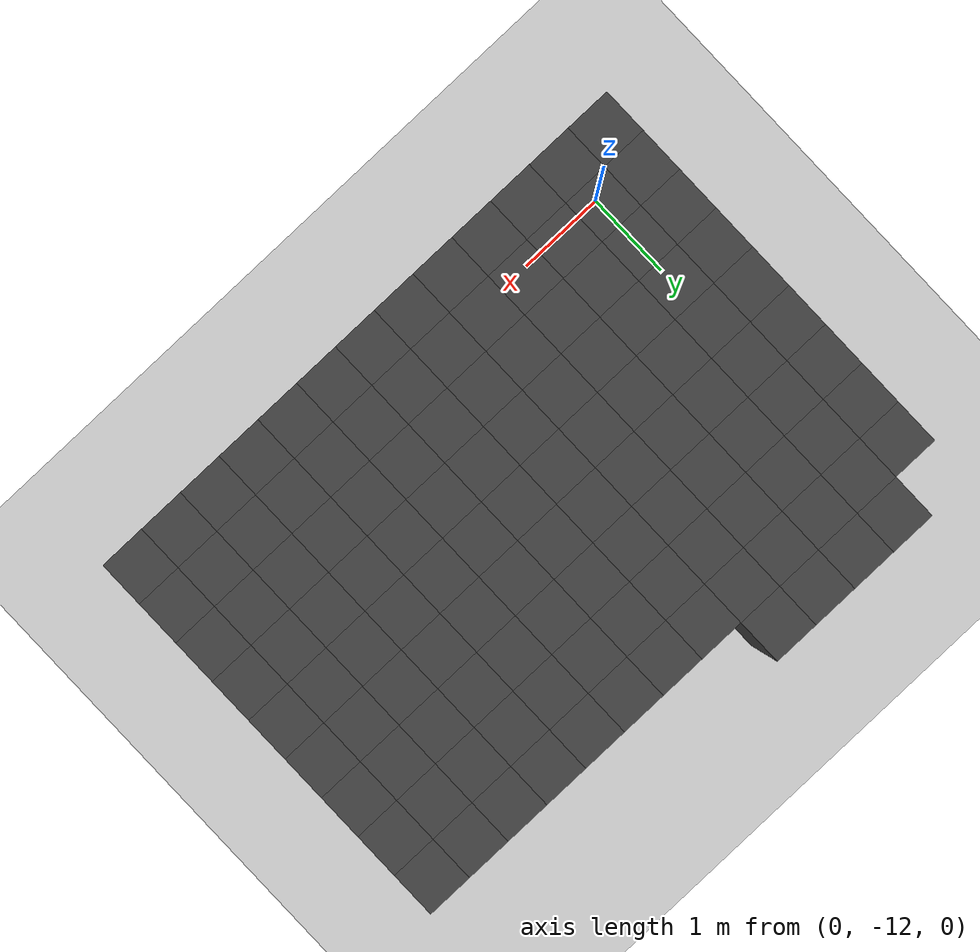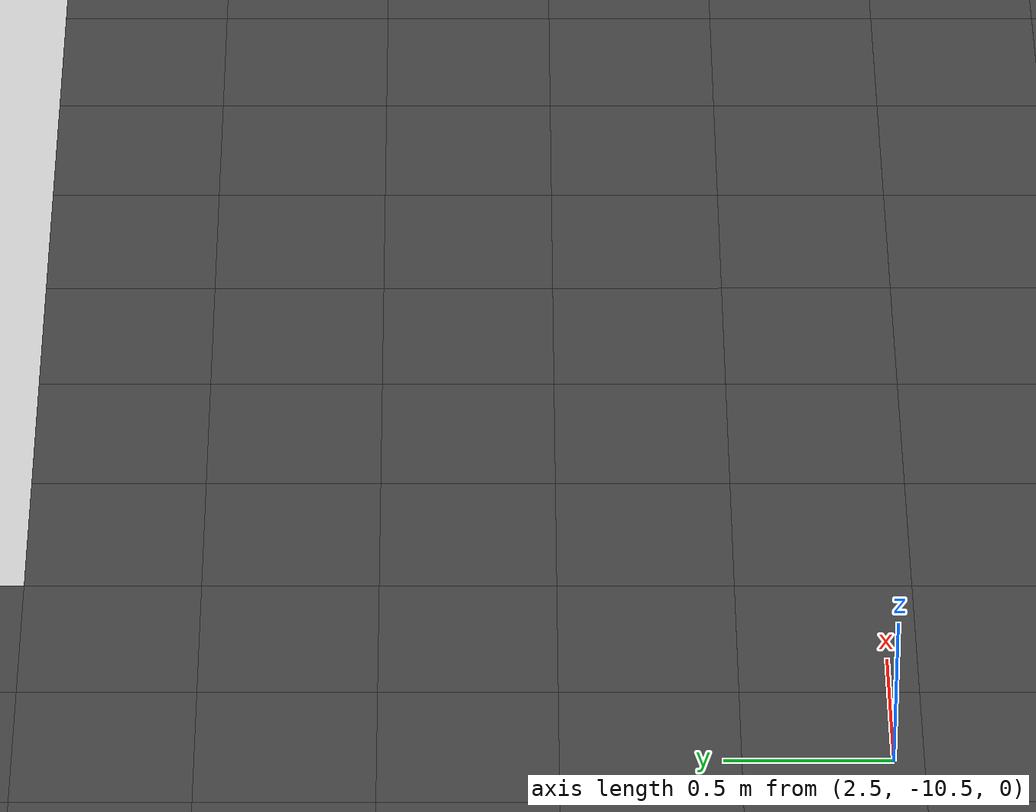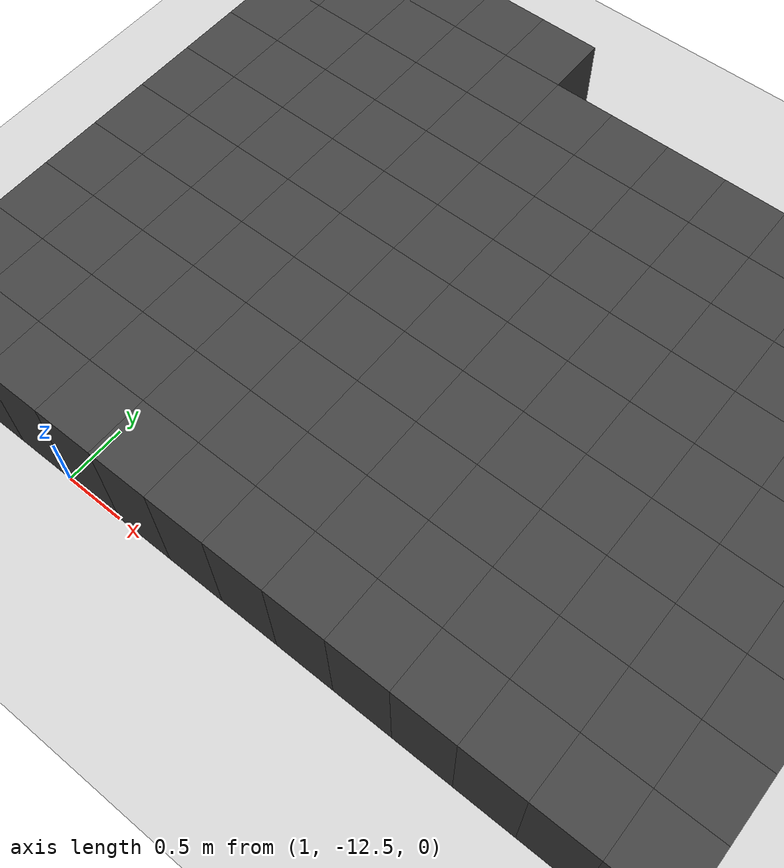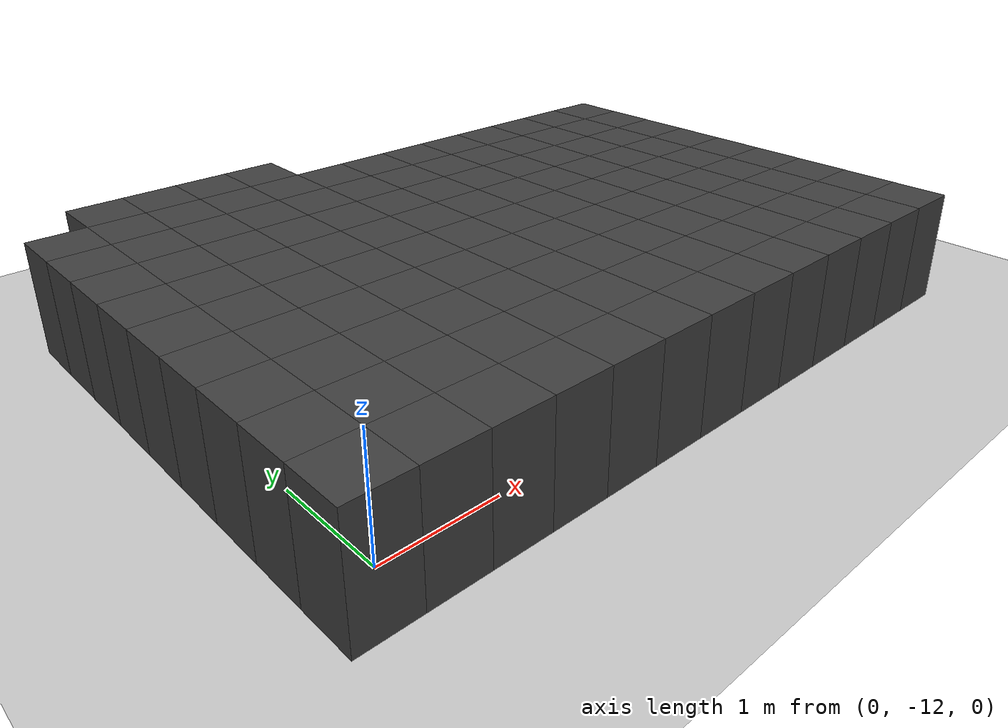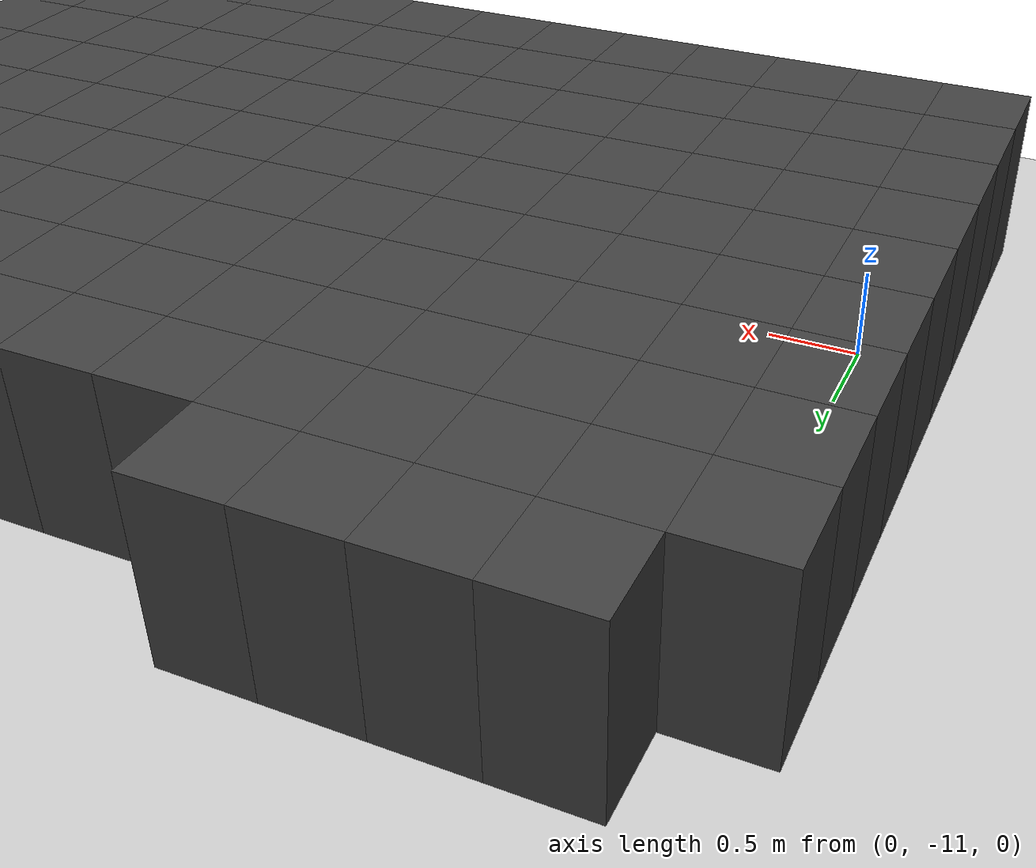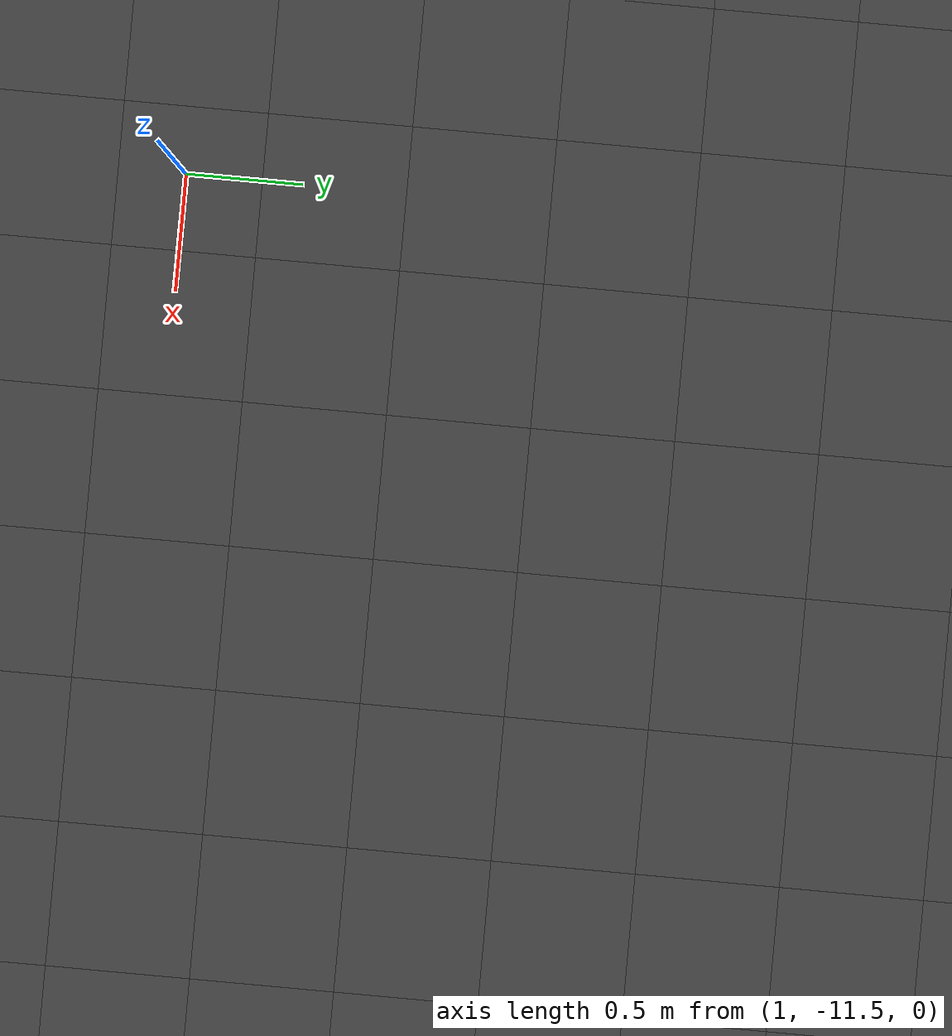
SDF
<sdf version="1.7">
 <world name="map_14547">
  <model name="ground_plane">
   <static>true</static>
   <link name="link">
    <collision name="collision">
     <geometry><plane><normal>0 0 1</normal><size>200 200</size></plane></geometry>
    </collision>
    <visual name="visual">
     <geometry><plane><normal>0 0 1</normal><size>200 200</size></plane></geometry>
     <material><ambient>0.8 0.8 0.8 1</ambient><diffuse>0.8 0.8 0.8 1</diffuse></material>
    </visual>
   </link>
  </model>
  <model name="maze_environment">
   <static>true</static>
   <link name="wall_1412">
    <pose>0.250 -7.750 0.500 0 0 0</pose>
    <collision name="col"><geometry><box><size>0.5 0.5 1.0</size></box></geometry></collision>
    <visual name="vis">
     <geometry><box><size>0.5 0.5 1.0</size></box></geometry>
     <material><ambient>0.15 0.15 0.15 1</ambient><diffuse>0.25 0.25 0.25 1</diffuse></material>
    </visual>
   </link>
   <link name="wall_1413">
    <pose>0.750 -7.750 0.500 0 0 0</pose>
    <collision name="col"><geometry><box><size>0.5 0.5 1.0</size></box></geometry></collision>
    <visual name="vis">
     <geometry><box><size>0.5 0.5 1.0</size></box></geometry>
     <material><ambient>0.15 0.15 0.15 1</ambient><diffuse>0.25 0.25 0.25 1</diffuse></material>
    </visual>
   </link>
   <link name="wall_1414">
    <pose>1.250 -7.750 0.500 0 0 0</pose>
    <collision name="col"><geometry><box><size>0.5 0.5 1.0</size></box></geometry></collision>
    <visual name="vis">
     <geometry><box><size>0.5 0.5 1.0</size></box></geometry>
     <material><ambient>0.15 0.15 0.15 1</ambient><diffuse>0.25 0.25 0.25 1</diffuse></material>
    </visual>
   </link>
   <link name="wall_1415">
    <pose>1.750 -7.750 0.500 0 0 0</pose>
    <collision name="col"><geometry><box><size>0.5 0.5 1.0</size></box></geometry></collision>
    <visual name="vis">
     <geometry><box><size>0.5 0.5 1.0</size></box></geometry>
     <material><ambient>0.15 0.15 0.15 1</ambient><diffuse>0.25 0.25 0.25 1</diffuse></material>
    </visual>
   </link>
   <link name="wall_1447">
    <pose>-0.250 -8.250 0.500 0 0 0</pose>
    <collision name="col"><geometry><box><size>0.5 0.5 1.0</size></box></geometry></collision>
    <visual name="vis">
     <geometry><box><size>0.5 0.5 1.0</size></box></geometry>
     <material><ambient>0.15 0.15 0.15 1</ambient><diffuse>0.25 0.25 0.25 1</diffuse></material>
    </visual>
   </link>
   <link name="wall_1448">
    <pose>0.250 -8.250 0.500 0 0 0</pose>
    <collision name="col"><geometry><box><size>0.5 0.5 1.0</size></box></geometry></collision>
    <visual name="vis">
     <geometry><box><size>0.5 0.5 1.0</size></box></geometry>
     <material><ambient>0.15 0.15 0.15 1</ambient><diffuse>0.25 0.25 0.25 1</diffuse></material>
    </visual>
   </link>
   <link name="wall_1449">
    <pose>0.750 -8.250 0.500 0 0 0</pose>
    <collision name="col"><geometry><box><size>0.5 0.5 1.0</size></box></geometry></collision>
    <visual name="vis">
     <geometry><box><size>0.5 0.5 1.0</size></box></geometry>
     <material><ambient>0.15 0.15 0.15 1</ambient><diffuse>0.25 0.25 0.25 1</diffuse></material>
    </visual>
   </link>
   <link name="wall_1450">
    <pose>1.250 -8.250 0.500 0 0 0</pose>
    <collision name="col"><geometry><box><size>0.5 0.5 1.0</size></box></geometry></collision>
    <visual name="vis">
     <geometry><box><size>0.5 0.5 1.0</size></box></geometry>
     <material><ambient>0.15 0.15 0.15 1</ambient><diffuse>0.25 0.25 0.25 1</diffuse></material>
    </visual>
   </link>
   <link name="wall_1451">
    <pose>1.750 -8.250 0.500 0 0 0</pose>
    <collision name="col"><geometry><box><size>0.5 0.5 1.0</size></box></geometry></collision>
    <visual name="vis">
     <geometry><box><size>0.5 0.5 1.0</size></box></geometry>
     <material><ambient>0.15 0.15 0.15 1</ambient><diffuse>0.25 0.25 0.25 1</diffuse></material>
    </visual>
   </link>
   <link name="wall_1452">
    <pose>2.250 -8.250 0.500 0 0 0</pose>
    <collision name="col"><geometry><box><size>0.5 0.5 1.0</size></box></geometry></collision>
    <visual name="vis">
     <geometry><box><size>0.5 0.5 1.0</size></box></geometry>
     <material><ambient>0.15 0.15 0.15 1</ambient><diffuse>0.25 0.25 0.25 1</diffuse></material>
    </visual>
   </link>
   <link name="wall_1453">
    <pose>2.750 -8.250 0.500 0 0 0</pose>
    <collision name="col"><geometry><box><size>0.5 0.5 1.0</size></box></geometry></collision>
    <visual name="vis">
     <geometry><box><size>0.5 0.5 1.0</size></box></geometry>
     <material><ambient>0.15 0.15 0.15 1</ambient><diffuse>0.25 0.25 0.25 1</diffuse></material>
    </visual>
   </link>
   <link name="wall_1454">
    <pose>3.250 -8.250 0.500 0 0 0</pose>
    <collision name="col"><geometry><box><size>0.5 0.5 1.0</size></box></geometry></collision>
    <visual name="vis">
     <geometry><box><size>0.5 0.5 1.0</size></box></geometry>
     <material><ambient>0.15 0.15 0.15 1</ambient><diffuse>0.25 0.25 0.25 1</diffuse></material>
    </visual>
   </link>
   <link name="wall_1455">
    <pose>3.750 -8.250 0.500 0 0 0</pose>
    <collision name="col"><geometry><box><size>0.5 0.5 1.0</size></box></geometry></collision>
    <visual name="vis">
     <geometry><box><size>0.5 0.5 1.0</size></box></geometry>
     <material><ambient>0.15 0.15 0.15 1</ambient><diffuse>0.25 0.25 0.25 1</diffuse></material>
    </visual>
   </link>
   <link name="wall_1456">
    <pose>4.250 -8.250 0.500 0 0 0</pose>
    <collision name="col"><geometry><box><size>0.5 0.5 1.0</size></box></geometry></collision>
    <visual name="vis">
     <geometry><box><size>0.5 0.5 1.0</size></box></geometry>
     <material><ambient>0.15 0.15 0.15 1</ambient><diffuse>0.25 0.25 0.25 1</diffuse></material>
    </visual>
   </link>
   <link name="wall_1457">
    <pose>4.750 -8.250 0.500 0 0 0</pose>
    <collision name="col"><geometry><box><size>0.5 0.5 1.0</size></box></geometry></collision>
    <visual name="vis">
     <geometry><box><size>0.5 0.5 1.0</size></box></geometry>
     <material><ambient>0.15 0.15 0.15 1</ambient><diffuse>0.25 0.25 0.25 1</diffuse></material>
    </visual>
   </link>
   <link name="wall_1458">
    <pose>5.250 -8.250 0.500 0 0 0</pose>
    <collision name="col"><geometry><box><size>0.5 0.5 1.0</size></box></geometry></collision>
    <visual name="vis">
     <geometry><box><size>0.5 0.5 1.0</size></box></geometry>
     <material><ambient>0.15 0.15 0.15 1</ambient><diffuse>0.25 0.25 0.25 1</diffuse></material>
    </visual>
   </link>
   <link name="wall_1459">
    <pose>5.750 -8.250 0.500 0 0 0</pose>
    <collision name="col"><geometry><box><size>0.5 0.5 1.0</size></box></geometry></collision>
    <visual name="vis">
     <geometry><box><size>0.5 0.5 1.0</size></box></geometry>
     <material><ambient>0.15 0.15 0.15 1</ambient><diffuse>0.25 0.25 0.25 1</diffuse></material>
    </visual>
   </link>
   <link name="wall_1484">
    <pose>-0.250 -8.750 0.500 0 0 0</pose>
    <collision name="col"><geometry><box><size>0.5 0.5 1.0</size></box></geometry></collision>
    <visual name="vis">
     <geometry><box><size>0.5 0.5 1.0</size></box></geometry>
     <material><ambient>0.15 0.15 0.15 1</ambient><diffuse>0.25 0.25 0.25 1</diffuse></material>
    </visual>
   </link>
   <link name="wall_1485">
    <pose>0.250 -8.750 0.500 0 0 0</pose>
    <collision name="col"><geometry><box><size>0.5 0.5 1.0</size></box></geometry></collision>
    <visual name="vis">
     <geometry><box><size>0.5 0.5 1.0</size></box></geometry>
     <material><ambient>0.15 0.15 0.15 1</ambient><diffuse>0.25 0.25 0.25 1</diffuse></material>
    </visual>
   </link>
   <link name="wall_1486">
    <pose>0.750 -8.750 0.500 0 0 0</pose>
    <collision name="col"><geometry><box><size>0.5 0.5 1.0</size></box></geometry></collision>
    <visual name="vis">
     <geometry><box><size>0.5 0.5 1.0</size></box></geometry>
     <material><ambient>0.15 0.15 0.15 1</ambient><diffuse>0.25 0.25 0.25 1</diffuse></material>
    </visual>
   </link>
   <link name="wall_1487">
    <pose>1.250 -8.750 0.500 0 0 0</pose>
    <collision name="col"><geometry><box><size>0.5 0.5 1.0</size></box></geometry></collision>
    <visual name="vis">
     <geometry><box><size>0.5 0.5 1.0</size></box></geometry>
     <material><ambient>0.15 0.15 0.15 1</ambient><diffuse>0.25 0.25 0.25 1</diffuse></material>
    </visual>
   </link>
   <link name="wall_1488">
    <pose>1.750 -8.750 0.500 0 0 0</pose>
    <collision name="col"><geometry><box><size>0.5 0.5 1.0</size></box></geometry></collision>
    <visual name="vis">
     <geometry><box><size>0.5 0.5 1.0</size></box></geometry>
     <material><ambient>0.15 0.15 0.15 1</ambient><diffuse>0.25 0.25 0.25 1</diffuse></material>
    </visual>
   </link>
   <link name="wall_1489">
    <pose>2.250 -8.750 0.500 0 0 0</pose>
    <collision name="col"><geometry><box><size>0.5 0.5 1.0</size></box></geometry></collision>
    <visual name="vis">
     <geometry><box><size>0.5 0.5 1.0</size></box></geometry>
     <material><ambient>0.15 0.15 0.15 1</ambient><diffuse>0.25 0.25 0.25 1</diffuse></material>
    </visual>
   </link>
   <link name="wall_1490">
    <pose>2.750 -8.750 0.500 0 0 0</pose>
    <collision name="col"><geometry><box><size>0.5 0.5 1.0</size></box></geometry></collision>
    <visual name="vis">
     <geometry><box><size>0.5 0.5 1.0</size></box></geometry>
     <material><ambient>0.15 0.15 0.15 1</ambient><diffuse>0.25 0.25 0.25 1</diffuse></material>
    </visual>
   </link>
   <link name="wall_1491">
    <pose>3.250 -8.750 0.500 0 0 0</pose>
    <collision name="col"><geometry><box><size>0.5 0.5 1.0</size></box></geometry></collision>
    <visual name="vis">
     <geometry><box><size>0.5 0.5 1.0</size></box></geometry>
     <material><ambient>0.15 0.15 0.15 1</ambient><diffuse>0.25 0.25 0.25 1</diffuse></material>
    </visual>
   </link>
   <link name="wall_1492">
    <pose>3.750 -8.750 0.500 0 0 0</pose>
    <collision name="col"><geometry><box><size>0.5 0.5 1.0</size></box></geometry></collision>
    <visual name="vis">
     <geometry><box><size>0.5 0.5 1.0</size></box></geometry>
     <material><ambient>0.15 0.15 0.15 1</ambient><diffuse>0.25 0.25 0.25 1</diffuse></material>
    </visual>
   </link>
   <link name="wall_1493">
    <pose>4.250 -8.750 0.500 0 0 0</pose>
    <collision name="col"><geometry><box><size>0.5 0.5 1.0</size></box></geometry></collision>
    <visual name="vis">
     <geometry><box><size>0.5 0.5 1.0</size></box></geometry>
     <material><ambient>0.15 0.15 0.15 1</ambient><diffuse>0.25 0.25 0.25 1</diffuse></material>
    </visual>
   </link>
   <link name="wall_1494">
    <pose>4.750 -8.750 0.500 0 0 0</pose>
    <collision name="col"><geometry><box><size>0.5 0.5 1.0</size></box></geometry></collision>
    <visual name="vis">
     <geometry><box><size>0.5 0.5 1.0</size></box></geometry>
     <material><ambient>0.15 0.15 0.15 1</ambient><diffuse>0.25 0.25 0.25 1</diffuse></material>
    </visual>
   </link>
   <link name="wall_1495">
    <pose>5.250 -8.750 0.500 0 0 0</pose>
    <collision name="col"><geometry><box><size>0.5 0.5 1.0</size></box></geometry></collision>
    <visual name="vis">
     <geometry><box><size>0.5 0.5 1.0</size></box></geometry>
     <material><ambient>0.15 0.15 0.15 1</ambient><diffuse>0.25 0.25 0.25 1</diffuse></material>
    </visual>
   </link>
   <link name="wall_1496">
    <pose>5.750 -8.750 0.500 0 0 0</pose>
    <collision name="col"><geometry><box><size>0.5 0.5 1.0</size></box></geometry></collision>
    <visual name="vis">
     <geometry><box><size>0.5 0.5 1.0</size></box></geometry>
     <material><ambient>0.15 0.15 0.15 1</ambient><diffuse>0.25 0.25 0.25 1</diffuse></material>
    </visual>
   </link>
   <link name="wall_1527">
    <pose>-0.250 -9.250 0.500 0 0 0</pose>
    <collision name="col"><geometry><box><size>0.5 0.5 1.0</size></box></geometry></collision>
    <visual name="vis">
     <geometry><box><size>0.5 0.5 1.0</size></box></geometry>
     <material><ambient>0.15 0.15 0.15 1</ambient><diffuse>0.25 0.25 0.25 1</diffuse></material>
    </visual>
   </link>
   <link name="wall_1528">
    <pose>0.250 -9.250 0.500 0 0 0</pose>
    <collision name="col"><geometry><box><size>0.5 0.5 1.0</size></box></geometry></collision>
    <visual name="vis">
     <geometry><box><size>0.5 0.5 1.0</size></box></geometry>
     <material><ambient>0.15 0.15 0.15 1</ambient><diffuse>0.25 0.25 0.25 1</diffuse></material>
    </visual>
   </link>
   <link name="wall_1529">
    <pose>0.750 -9.250 0.500 0 0 0</pose>
    <collision name="col"><geometry><box><size>0.5 0.5 1.0</size></box></geometry></collision>
    <visual name="vis">
     <geometry><box><size>0.5 0.5 1.0</size></box></geometry>
     <material><ambient>0.15 0.15 0.15 1</ambient><diffuse>0.25 0.25 0.25 1</diffuse></material>
    </visual>
   </link>
   <link name="wall_1530">
    <pose>1.250 -9.250 0.500 0 0 0</pose>
    <collision name="col"><geometry><box><size>0.5 0.5 1.0</size></box></geometry></collision>
    <visual name="vis">
     <geometry><box><size>0.5 0.5 1.0</size></box></geometry>
     <material><ambient>0.15 0.15 0.15 1</ambient><diffuse>0.25 0.25 0.25 1</diffuse></material>
    </visual>
   </link>
   <link name="wall_1531">
    <pose>1.750 -9.250 0.500 0 0 0</pose>
    <collision name="col"><geometry><box><size>0.5 0.5 1.0</size></box></geometry></collision>
    <visual name="vis">
     <geometry><box><size>0.5 0.5 1.0</size></box></geometry>
     <material><ambient>0.15 0.15 0.15 1</ambient><diffuse>0.25 0.25 0.25 1</diffuse></material>
    </visual>
   </link>
   <link name="wall_1532">
    <pose>2.250 -9.250 0.500 0 0 0</pose>
    <collision name="col"><geometry><box><size>0.5 0.5 1.0</size></box></geometry></collision>
    <visual name="vis">
     <geometry><box><size>0.5 0.5 1.0</size></box></geometry>
     <material><ambient>0.15 0.15 0.15 1</ambient><diffuse>0.25 0.25 0.25 1</diffuse></material>
    </visual>
   </link>
   <link name="wall_1533">
    <pose>2.750 -9.250 0.500 0 0 0</pose>
    <collision name="col"><geometry><box><size>0.5 0.5 1.0</size></box></geometry></collision>
    <visual name="vis">
     <geometry><box><size>0.5 0.5 1.0</size></box></geometry>
     <material><ambient>0.15 0.15 0.15 1</ambient><diffuse>0.25 0.25 0.25 1</diffuse></material>
    </visual>
   </link>
   <link name="wall_1534">
    <pose>3.250 -9.250 0.500 0 0 0</pose>
    <collision name="col"><geometry><box><size>0.5 0.5 1.0</size></box></geometry></collision>
    <visual name="vis">
     <geometry><box><size>0.5 0.5 1.0</size></box></geometry>
     <material><ambient>0.15 0.15 0.15 1</ambient><diffuse>0.25 0.25 0.25 1</diffuse></material>
    </visual>
   </link>
   <link name="wall_1535">
    <pose>3.750 -9.250 0.500 0 0 0</pose>
    <collision name="col"><geometry><box><size>0.5 0.5 1.0</size></box></geometry></collision>
    <visual name="vis">
     <geometry><box><size>0.5 0.5 1.0</size></box></geometry>
     <material><ambient>0.15 0.15 0.15 1</ambient><diffuse>0.25 0.25 0.25 1</diffuse></material>
    </visual>
   </link>
   <link name="wall_1536">
    <pose>4.250 -9.250 0.500 0 0 0</pose>
    <collision name="col"><geometry><box><size>0.5 0.5 1.0</size></box></geometry></collision>
    <visual name="vis">
     <geometry><box><size>0.5 0.5 1.0</size></box></geometry>
     <material><ambient>0.15 0.15 0.15 1</ambient><diffuse>0.25 0.25 0.25 1</diffuse></material>
    </visual>
   </link>
   <link name="wall_1537">
    <pose>4.750 -9.250 0.500 0 0 0</pose>
    <collision name="col"><geometry><box><size>0.5 0.5 1.0</size></box></geometry></collision>
    <visual name="vis">
     <geometry><box><size>0.5 0.5 1.0</size></box></geometry>
     <material><ambient>0.15 0.15 0.15 1</ambient><diffuse>0.25 0.25 0.25 1</diffuse></material>
    </visual>
   </link>
   <link name="wall_1538">
    <pose>5.250 -9.250 0.500 0 0 0</pose>
    <collision name="col"><geometry><box><size>0.5 0.5 1.0</size></box></geometry></collision>
    <visual name="vis">
     <geometry><box><size>0.5 0.5 1.0</size></box></geometry>
     <material><ambient>0.15 0.15 0.15 1</ambient><diffuse>0.25 0.25 0.25 1</diffuse></material>
    </visual>
   </link>
   <link name="wall_1539">
    <pose>5.750 -9.250 0.500 0 0 0</pose>
    <collision name="col"><geometry><box><size>0.5 0.5 1.0</size></box></geometry></collision>
    <visual name="vis">
     <geometry><box><size>0.5 0.5 1.0</size></box></geometry>
     <material><ambient>0.15 0.15 0.15 1</ambient><diffuse>0.25 0.25 0.25 1</diffuse></material>
    </visual>
   </link>
   <link name="wall_1570">
    <pose>-0.250 -9.750 0.500 0 0 0</pose>
    <collision name="col"><geometry><box><size>0.5 0.5 1.0</size></box></geometry></collision>
    <visual name="vis">
     <geometry><box><size>0.5 0.5 1.0</size></box></geometry>
     <material><ambient>0.15 0.15 0.15 1</ambient><diffuse>0.25 0.25 0.25 1</diffuse></material>
    </visual>
   </link>
   <link name="wall_1571">
    <pose>0.250 -9.750 0.500 0 0 0</pose>
    <collision name="col"><geometry><box><size>0.5 0.5 1.0</size></box></geometry></collision>
    <visual name="vis">
     <geometry><box><size>0.5 0.5 1.0</size></box></geometry>
     <material><ambient>0.15 0.15 0.15 1</ambient><diffuse>0.25 0.25 0.25 1</diffuse></material>
    </visual>
   </link>
   <link name="wall_1572">
    <pose>0.750 -9.750 0.500 0 0 0</pose>
    <collision name="col"><geometry><box><size>0.5 0.5 1.0</size></box></geometry></collision>
    <visual name="vis">
     <geometry><box><size>0.5 0.5 1.0</size></box></geometry>
     <material><ambient>0.15 0.15 0.15 1</ambient><diffuse>0.25 0.25 0.25 1</diffuse></material>
    </visual>
   </link>
   <link name="wall_1573">
    <pose>1.250 -9.750 0.500 0 0 0</pose>
    <collision name="col"><geometry><box><size>0.5 0.5 1.0</size></box></geometry></collision>
    <visual name="vis">
     <geometry><box><size>0.5 0.5 1.0</size></box></geometry>
     <material><ambient>0.15 0.15 0.15 1</ambient><diffuse>0.25 0.25 0.25 1</diffuse></material>
    </visual>
   </link>
   <link name="wall_1574">
    <pose>1.750 -9.750 0.500 0 0 0</pose>
    <collision name="col"><geometry><box><size>0.5 0.5 1.0</size></box></geometry></collision>
    <visual name="vis">
     <geometry><box><size>0.5 0.5 1.0</size></box></geometry>
     <material><ambient>0.15 0.15 0.15 1</ambient><diffuse>0.25 0.25 0.25 1</diffuse></material>
    </visual>
   </link>
   <link name="wall_1575">
    <pose>2.250 -9.750 0.500 0 0 0</pose>
    <collision name="col"><geometry><box><size>0.5 0.5 1.0</size></box></geometry></collision>
    <visual name="vis">
     <geometry><box><size>0.5 0.5 1.0</size></box></geometry>
     <material><ambient>0.15 0.15 0.15 1</ambient><diffuse>0.25 0.25 0.25 1</diffuse></material>
    </visual>
   </link>
   <link name="wall_1576">
    <pose>2.750 -9.750 0.500 0 0 0</pose>
    <collision name="col"><geometry><box><size>0.5 0.5 1.0</size></box></geometry></collision>
    <visual name="vis">
     <geometry><box><size>0.5 0.5 1.0</size></box></geometry>
     <material><ambient>0.15 0.15 0.15 1</ambient><diffuse>0.25 0.25 0.25 1</diffuse></material>
    </visual>
   </link>
   <link name="wall_1577">
    <pose>3.250 -9.750 0.500 0 0 0</pose>
    <collision name="col"><geometry><box><size>0.5 0.5 1.0</size></box></geometry></collision>
    <visual name="vis">
     <geometry><box><size>0.5 0.5 1.0</size></box></geometry>
     <material><ambient>0.15 0.15 0.15 1</ambient><diffuse>0.25 0.25 0.25 1</diffuse></material>
    </visual>
   </link>
   <link name="wall_1578">
    <pose>3.750 -9.750 0.500 0 0 0</pose>
    <collision name="col"><geometry><box><size>0.5 0.5 1.0</size></box></geometry></collision>
    <visual name="vis">
     <geometry><box><size>0.5 0.5 1.0</size></box></geometry>
     <material><ambient>0.15 0.15 0.15 1</ambient><diffuse>0.25 0.25 0.25 1</diffuse></material>
    </visual>
   </link>
   <link name="wall_1579">
    <pose>4.250 -9.750 0.500 0 0 0</pose>
    <collision name="col"><geometry><box><size>0.5 0.5 1.0</size></box></geometry></collision>
    <visual name="vis">
     <geometry><box><size>0.5 0.5 1.0</size></box></geometry>
     <material><ambient>0.15 0.15 0.15 1</ambient><diffuse>0.25 0.25 0.25 1</diffuse></material>
    </visual>
   </link>
   <link name="wall_1580">
    <pose>4.750 -9.750 0.500 0 0 0</pose>
    <collision name="col"><geometry><box><size>0.5 0.5 1.0</size></box></geometry></collision>
    <visual name="vis">
     <geometry><box><size>0.5 0.5 1.0</size></box></geometry>
     <material><ambient>0.15 0.15 0.15 1</ambient><diffuse>0.25 0.25 0.25 1</diffuse></material>
    </visual>
   </link>
   <link name="wall_1581">
    <pose>5.250 -9.750 0.500 0 0 0</pose>
    <collision name="col"><geometry><box><size>0.5 0.5 1.0</size></box></geometry></collision>
    <visual name="vis">
     <geometry><box><size>0.5 0.5 1.0</size></box></geometry>
     <material><ambient>0.15 0.15 0.15 1</ambient><diffuse>0.25 0.25 0.25 1</diffuse></material>
    </visual>
   </link>
   <link name="wall_1582">
    <pose>5.750 -9.750 0.500 0 0 0</pose>
    <collision name="col"><geometry><box><size>0.5 0.5 1.0</size></box></geometry></collision>
    <visual name="vis">
     <geometry><box><size>0.5 0.5 1.0</size></box></geometry>
     <material><ambient>0.15 0.15 0.15 1</ambient><diffuse>0.25 0.25 0.25 1</diffuse></material>
    </visual>
   </link>
   <link name="wall_1613">
    <pose>-0.250 -10.250 0.500 0 0 0</pose>
    <collision name="col"><geometry><box><size>0.5 0.5 1.0</size></box></geometry></collision>
    <visual name="vis">
     <geometry><box><size>0.5 0.5 1.0</size></box></geometry>
     <material><ambient>0.15 0.15 0.15 1</ambient><diffuse>0.25 0.25 0.25 1</diffuse></material>
    </visual>
   </link>
   <link name="wall_1614">
    <pose>0.250 -10.250 0.500 0 0 0</pose>
    <collision name="col"><geometry><box><size>0.5 0.5 1.0</size></box></geometry></collision>
    <visual name="vis">
     <geometry><box><size>0.5 0.5 1.0</size></box></geometry>
     <material><ambient>0.15 0.15 0.15 1</ambient><diffuse>0.25 0.25 0.25 1</diffuse></material>
    </visual>
   </link>
   <link name="wall_1615">
    <pose>0.750 -10.250 0.500 0 0 0</pose>
    <collision name="col"><geometry><box><size>0.5 0.5 1.0</size></box></geometry></collision>
    <visual name="vis">
     <geometry><box><size>0.5 0.5 1.0</size></box></geometry>
     <material><ambient>0.15 0.15 0.15 1</ambient><diffuse>0.25 0.25 0.25 1</diffuse></material>
    </visual>
   </link>
   <link name="wall_1616">
    <pose>1.250 -10.250 0.500 0 0 0</pose>
    <collision name="col"><geometry><box><size>0.5 0.5 1.0</size></box></geometry></collision>
    <visual name="vis">
     <geometry><box><size>0.5 0.5 1.0</size></box></geometry>
     <material><ambient>0.15 0.15 0.15 1</ambient><diffuse>0.25 0.25 0.25 1</diffuse></material>
    </visual>
   </link>
   <link name="wall_1617">
    <pose>1.750 -10.250 0.500 0 0 0</pose>
    <collision name="col"><geometry><box><size>0.5 0.5 1.0</size></box></geometry></collision>
    <visual name="vis">
     <geometry><box><size>0.5 0.5 1.0</size></box></geometry>
     <material><ambient>0.15 0.15 0.15 1</ambient><diffuse>0.25 0.25 0.25 1</diffuse></material>
    </visual>
   </link>
   <link name="wall_1618">
    <pose>2.250 -10.250 0.500 0 0 0</pose>
    <collision name="col"><geometry><box><size>0.5 0.5 1.0</size></box></geometry></collision>
    <visual name="vis">
     <geometry><box><size>0.5 0.5 1.0</size></box></geometry>
     <material><ambient>0.15 0.15 0.15 1</ambient><diffuse>0.25 0.25 0.25 1</diffuse></material>
    </visual>
   </link>
   <link name="wall_1619">
    <pose>2.750 -10.250 0.500 0 0 0</pose>
    <collision name="col"><geometry><box><size>0.5 0.5 1.0</size></box></geometry></collision>
    <visual name="vis">
     <geometry><box><size>0.5 0.5 1.0</size></box></geometry>
     <material><ambient>0.15 0.15 0.15 1</ambient><diffuse>0.25 0.25 0.25 1</diffuse></material>
    </visual>
   </link>
   <link name="wall_1620">
    <pose>3.250 -10.250 0.500 0 0 0</pose>
    <collision name="col"><geometry><box><size>0.5 0.5 1.0</size></box></geometry></collision>
    <visual name="vis">
     <geometry><box><size>0.5 0.5 1.0</size></box></geometry>
     <material><ambient>0.15 0.15 0.15 1</ambient><diffuse>0.25 0.25 0.25 1</diffuse></material>
    </visual>
   </link>
   <link name="wall_1621">
    <pose>3.750 -10.250 0.500 0 0 0</pose>
    <collision name="col"><geometry><box><size>0.5 0.5 1.0</size></box></geometry></collision>
    <visual name="vis">
     <geometry><box><size>0.5 0.5 1.0</size></box></geometry>
     <material><ambient>0.15 0.15 0.15 1</ambient><diffuse>0.25 0.25 0.25 1</diffuse></material>
    </visual>
   </link>
   <link name="wall_1622">
    <pose>4.250 -10.250 0.500 0 0 0</pose>
    <collision name="col"><geometry><box><size>0.5 0.5 1.0</size></box></geometry></collision>
    <visual name="vis">
     <geometry><box><size>0.5 0.5 1.0</size></box></geometry>
     <material><ambient>0.15 0.15 0.15 1</ambient><diffuse>0.25 0.25 0.25 1</diffuse></material>
    </visual>
   </link>
   <link name="wall_1623">
    <pose>4.750 -10.250 0.500 0 0 0</pose>
    <collision name="col"><geometry><box><size>0.5 0.5 1.0</size></box></geometry></collision>
    <visual name="vis">
     <geometry><box><size>0.5 0.5 1.0</size></box></geometry>
     <material><ambient>0.15 0.15 0.15 1</ambient><diffuse>0.25 0.25 0.25 1</diffuse></material>
    </visual>
   </link>
   <link name="wall_1624">
    <pose>5.250 -10.250 0.500 0 0 0</pose>
    <collision name="col"><geometry><box><size>0.5 0.5 1.0</size></box></geometry></collision>
    <visual name="vis">
     <geometry><box><size>0.5 0.5 1.0</size></box></geometry>
     <material><ambient>0.15 0.15 0.15 1</ambient><diffuse>0.25 0.25 0.25 1</diffuse></material>
    </visual>
   </link>
   <link name="wall_1625">
    <pose>5.750 -10.250 0.500 0 0 0</pose>
    <collision name="col"><geometry><box><size>0.5 0.5 1.0</size></box></geometry></collision>
    <visual name="vis">
     <geometry><box><size>0.5 0.5 1.0</size></box></geometry>
     <material><ambient>0.15 0.15 0.15 1</ambient><diffuse>0.25 0.25 0.25 1</diffuse></material>
    </visual>
   </link>
   <link name="wall_1662">
    <pose>-0.250 -10.750 0.500 0 0 0</pose>
    <collision name="col"><geometry><box><size>0.5 0.5 1.0</size></box></geometry></collision>
    <visual name="vis">
     <geometry><box><size>0.5 0.5 1.0</size></box></geometry>
     <material><ambient>0.15 0.15 0.15 1</ambient><diffuse>0.25 0.25 0.25 1</diffuse></material>
    </visual>
   </link>
   <link name="wall_1663">
    <pose>0.250 -10.750 0.500 0 0 0</pose>
    <collision name="col"><geometry><box><size>0.5 0.5 1.0</size></box></geometry></collision>
    <visual name="vis">
     <geometry><box><size>0.5 0.5 1.0</size></box></geometry>
     <material><ambient>0.15 0.15 0.15 1</ambient><diffuse>0.25 0.25 0.25 1</diffuse></material>
    </visual>
   </link>
   <link name="wall_1664">
    <pose>0.750 -10.750 0.500 0 0 0</pose>
    <collision name="col"><geometry><box><size>0.5 0.5 1.0</size></box></geometry></collision>
    <visual name="vis">
     <geometry><box><size>0.5 0.5 1.0</size></box></geometry>
     <material><ambient>0.15 0.15 0.15 1</ambient><diffuse>0.25 0.25 0.25 1</diffuse></material>
    </visual>
   </link>
   <link name="wall_1665">
    <pose>1.250 -10.750 0.500 0 0 0</pose>
    <collision name="col"><geometry><box><size>0.5 0.5 1.0</size></box></geometry></collision>
    <visual name="vis">
     <geometry><box><size>0.5 0.5 1.0</size></box></geometry>
     <material><ambient>0.15 0.15 0.15 1</ambient><diffuse>0.25 0.25 0.25 1</diffuse></material>
    </visual>
   </link>
   <link name="wall_1666">
    <pose>1.750 -10.750 0.500 0 0 0</pose>
    <collision name="col"><geometry><box><size>0.5 0.5 1.0</size></box></geometry></collision>
    <visual name="vis">
     <geometry><box><size>0.5 0.5 1.0</size></box></geometry>
     <material><ambient>0.15 0.15 0.15 1</ambient><diffuse>0.25 0.25 0.25 1</diffuse></material>
    </visual>
   </link>
   <link name="wall_1667">
    <pose>2.250 -10.750 0.500 0 0 0</pose>
    <collision name="col"><geometry><box><size>0.5 0.5 1.0</size></box></geometry></collision>
    <visual name="vis">
     <geometry><box><size>0.5 0.5 1.0</size></box></geometry>
     <material><ambient>0.15 0.15 0.15 1</ambient><diffuse>0.25 0.25 0.25 1</diffuse></material>
    </visual>
   </link>
   <link name="wall_1668">
    <pose>2.750 -10.750 0.500 0 0 0</pose>
    <collision name="col"><geometry><box><size>0.5 0.5 1.0</size></box></geometry></collision>
    <visual name="vis">
     <geometry><box><size>0.5 0.5 1.0</size></box></geometry>
     <material><ambient>0.15 0.15 0.15 1</ambient><diffuse>0.25 0.25 0.25 1</diffuse></material>
    </visual>
   </link>
   <link name="wall_1669">
    <pose>3.250 -10.750 0.500 0 0 0</pose>
    <collision name="col"><geometry><box><size>0.5 0.5 1.0</size></box></geometry></collision>
    <visual name="vis">
     <geometry><box><size>0.5 0.5 1.0</size></box></geometry>
     <material><ambient>0.15 0.15 0.15 1</ambient><diffuse>0.25 0.25 0.25 1</diffuse></material>
    </visual>
   </link>
   <link name="wall_1670">
    <pose>3.750 -10.750 0.500 0 0 0</pose>
    <collision name="col"><geometry><box><size>0.5 0.5 1.0</size></box></geometry></collision>
    <visual name="vis">
     <geometry><box><size>0.5 0.5 1.0</size></box></geometry>
     <material><ambient>0.15 0.15 0.15 1</ambient><diffuse>0.25 0.25 0.25 1</diffuse></material>
    </visual>
   </link>
   <link name="wall_1671">
    <pose>4.250 -10.750 0.500 0 0 0</pose>
    <collision name="col"><geometry><box><size>0.5 0.5 1.0</size></box></geometry></collision>
    <visual name="vis">
     <geometry><box><size>0.5 0.5 1.0</size></box></geometry>
     <material><ambient>0.15 0.15 0.15 1</ambient><diffuse>0.25 0.25 0.25 1</diffuse></material>
    </visual>
   </link>
   <link name="wall_1672">
    <pose>4.750 -10.750 0.500 0 0 0</pose>
    <collision name="col"><geometry><box><size>0.5 0.5 1.0</size></box></geometry></collision>
    <visual name="vis">
     <geometry><box><size>0.5 0.5 1.0</size></box></geometry>
     <material><ambient>0.15 0.15 0.15 1</ambient><diffuse>0.25 0.25 0.25 1</diffuse></material>
    </visual>
   </link>
   <link name="wall_1673">
    <pose>5.250 -10.750 0.500 0 0 0</pose>
    <collision name="col"><geometry><box><size>0.5 0.5 1.0</size></box></geometry></collision>
    <visual name="vis">
     <geometry><box><size>0.5 0.5 1.0</size></box></geometry>
     <material><ambient>0.15 0.15 0.15 1</ambient><diffuse>0.25 0.25 0.25 1</diffuse></material>
    </visual>
   </link>
   <link name="wall_1674">
    <pose>5.750 -10.750 0.500 0 0 0</pose>
    <collision name="col"><geometry><box><size>0.5 0.5 1.0</size></box></geometry></collision>
    <visual name="vis">
     <geometry><box><size>0.5 0.5 1.0</size></box></geometry>
     <material><ambient>0.15 0.15 0.15 1</ambient><diffuse>0.25 0.25 0.25 1</diffuse></material>
    </visual>
   </link>
   <link name="wall_1708">
    <pose>-0.250 -11.250 0.500 0 0 0</pose>
    <collision name="col"><geometry><box><size>0.5 0.5 1.0</size></box></geometry></collision>
    <visual name="vis">
     <geometry><box><size>0.5 0.5 1.0</size></box></geometry>
     <material><ambient>0.15 0.15 0.15 1</ambient><diffuse>0.25 0.25 0.25 1</diffuse></material>
    </visual>
   </link>
   <link name="wall_1709">
    <pose>0.250 -11.250 0.500 0 0 0</pose>
    <collision name="col"><geometry><box><size>0.5 0.5 1.0</size></box></geometry></collision>
    <visual name="vis">
     <geometry><box><size>0.5 0.5 1.0</size></box></geometry>
     <material><ambient>0.15 0.15 0.15 1</ambient><diffuse>0.25 0.25 0.25 1</diffuse></material>
    </visual>
   </link>
   <link name="wall_1710">
    <pose>0.750 -11.250 0.500 0 0 0</pose>
    <collision name="col"><geometry><box><size>0.5 0.5 1.0</size></box></geometry></collision>
    <visual name="vis">
     <geometry><box><size>0.5 0.5 1.0</size></box></geometry>
     <material><ambient>0.15 0.15 0.15 1</ambient><diffuse>0.25 0.25 0.25 1</diffuse></material>
    </visual>
   </link>
   <link name="wall_1711">
    <pose>1.250 -11.250 0.500 0 0 0</pose>
    <collision name="col"><geometry><box><size>0.5 0.5 1.0</size></box></geometry></collision>
    <visual name="vis">
     <geometry><box><size>0.5 0.5 1.0</size></box></geometry>
     <material><ambient>0.15 0.15 0.15 1</ambient><diffuse>0.25 0.25 0.25 1</diffuse></material>
    </visual>
   </link>
   <link name="wall_1712">
    <pose>1.750 -11.250 0.500 0 0 0</pose>
    <collision name="col"><geometry><box><size>0.5 0.5 1.0</size></box></geometry></collision>
    <visual name="vis">
     <geometry><box><size>0.5 0.5 1.0</size></box></geometry>
     <material><ambient>0.15 0.15 0.15 1</ambient><diffuse>0.25 0.25 0.25 1</diffuse></material>
    </visual>
   </link>
   <link name="wall_1713">
    <pose>2.250 -11.250 0.500 0 0 0</pose>
    <collision name="col"><geometry><box><size>0.5 0.5 1.0</size></box></geometry></collision>
    <visual name="vis">
     <geometry><box><size>0.5 0.5 1.0</size></box></geometry>
     <material><ambient>0.15 0.15 0.15 1</ambient><diffuse>0.25 0.25 0.25 1</diffuse></material>
    </visual>
   </link>
   <link name="wall_1714">
    <pose>2.750 -11.250 0.500 0 0 0</pose>
    <collision name="col"><geometry><box><size>0.5 0.5 1.0</size></box></geometry></collision>
    <visual name="vis">
     <geometry><box><size>0.5 0.5 1.0</size></box></geometry>
     <material><ambient>0.15 0.15 0.15 1</ambient><diffuse>0.25 0.25 0.25 1</diffuse></material>
    </visual>
   </link>
   <link name="wall_1715">
    <pose>3.250 -11.250 0.500 0 0 0</pose>
    <collision name="col"><geometry><box><size>0.5 0.5 1.0</size></box></geometry></collision>
    <visual name="vis">
     <geometry><box><size>0.5 0.5 1.0</size></box></geometry>
     <material><ambient>0.15 0.15 0.15 1</ambient><diffuse>0.25 0.25 0.25 1</diffuse></material>
    </visual>
   </link>
   <link name="wall_1716">
    <pose>3.750 -11.250 0.500 0 0 0</pose>
    <collision name="col"><geometry><box><size>0.5 0.5 1.0</size></box></geometry></collision>
    <visual name="vis">
     <geometry><box><size>0.5 0.5 1.0</size></box></geometry>
     <material><ambient>0.15 0.15 0.15 1</ambient><diffuse>0.25 0.25 0.25 1</diffuse></material>
    </visual>
   </link>
   <link name="wall_1717">
    <pose>4.250 -11.250 0.500 0 0 0</pose>
    <collision name="col"><geometry><box><size>0.5 0.5 1.0</size></box></geometry></collision>
    <visual name="vis">
     <geometry><box><size>0.5 0.5 1.0</size></box></geometry>
     <material><ambient>0.15 0.15 0.15 1</ambient><diffuse>0.25 0.25 0.25 1</diffuse></material>
    </visual>
   </link>
   <link name="wall_1718">
    <pose>4.750 -11.250 0.500 0 0 0</pose>
    <collision name="col"><geometry><box><size>0.5 0.5 1.0</size></box></geometry></collision>
    <visual name="vis">
     <geometry><box><size>0.5 0.5 1.0</size></box></geometry>
     <material><ambient>0.15 0.15 0.15 1</ambient><diffuse>0.25 0.25 0.25 1</diffuse></material>
    </visual>
   </link>
   <link name="wall_1719">
    <pose>5.250 -11.250 0.500 0 0 0</pose>
    <collision name="col"><geometry><box><size>0.5 0.5 1.0</size></box></geometry></collision>
    <visual name="vis">
     <geometry><box><size>0.5 0.5 1.0</size></box></geometry>
     <material><ambient>0.15 0.15 0.15 1</ambient><diffuse>0.25 0.25 0.25 1</diffuse></material>
    </visual>
   </link>
   <link name="wall_1720">
    <pose>5.750 -11.250 0.500 0 0 0</pose>
    <collision name="col"><geometry><box><size>0.5 0.5 1.0</size></box></geometry></collision>
    <visual name="vis">
     <geometry><box><size>0.5 0.5 1.0</size></box></geometry>
     <material><ambient>0.15 0.15 0.15 1</ambient><diffuse>0.25 0.25 0.25 1</diffuse></material>
    </visual>
   </link>
   <link name="wall_1751">
    <pose>-0.250 -11.750 0.500 0 0 0</pose>
    <collision name="col"><geometry><box><size>0.5 0.5 1.0</size></box></geometry></collision>
    <visual name="vis">
     <geometry><box><size>0.5 0.5 1.0</size></box></geometry>
     <material><ambient>0.15 0.15 0.15 1</ambient><diffuse>0.25 0.25 0.25 1</diffuse></material>
    </visual>
   </link>
   <link name="wall_1752">
    <pose>0.250 -11.750 0.500 0 0 0</pose>
    <collision name="col"><geometry><box><size>0.5 0.5 1.0</size></box></geometry></collision>
    <visual name="vis">
     <geometry><box><size>0.5 0.5 1.0</size></box></geometry>
     <material><ambient>0.15 0.15 0.15 1</ambient><diffuse>0.25 0.25 0.25 1</diffuse></material>
    </visual>
   </link>
   <link name="wall_1753">
    <pose>0.750 -11.750 0.500 0 0 0</pose>
    <collision name="col"><geometry><box><size>0.5 0.5 1.0</size></box></geometry></collision>
    <visual name="vis">
     <geometry><box><size>0.5 0.5 1.0</size></box></geometry>
     <material><ambient>0.15 0.15 0.15 1</ambient><diffuse>0.25 0.25 0.25 1</diffuse></material>
    </visual>
   </link>
   <link name="wall_1754">
    <pose>1.250 -11.750 0.500 0 0 0</pose>
    <collision name="col"><geometry><box><size>0.5 0.5 1.0</size></box></geometry></collision>
    <visual name="vis">
     <geometry><box><size>0.5 0.5 1.0</size></box></geometry>
     <material><ambient>0.15 0.15 0.15 1</ambient><diffuse>0.25 0.25 0.25 1</diffuse></material>
    </visual>
   </link>
   <link name="wall_1755">
    <pose>1.750 -11.750 0.500 0 0 0</pose>
    <collision name="col"><geometry><box><size>0.5 0.5 1.0</size></box></geometry></collision>
    <visual name="vis">
     <geometry><box><size>0.5 0.5 1.0</size></box></geometry>
     <material><ambient>0.15 0.15 0.15 1</ambient><diffuse>0.25 0.25 0.25 1</diffuse></material>
    </visual>
   </link>
   <link name="wall_1756">
    <pose>2.250 -11.750 0.500 0 0 0</pose>
    <collision name="col"><geometry><box><size>0.5 0.5 1.0</size></box></geometry></collision>
    <visual name="vis">
     <geometry><box><size>0.5 0.5 1.0</size></box></geometry>
     <material><ambient>0.15 0.15 0.15 1</ambient><diffuse>0.25 0.25 0.25 1</diffuse></material>
    </visual>
   </link>
   <link name="wall_1757">
    <pose>2.750 -11.750 0.500 0 0 0</pose>
    <collision name="col"><geometry><box><size>0.5 0.5 1.0</size></box></geometry></collision>
    <visual name="vis">
     <geometry><box><size>0.5 0.5 1.0</size></box></geometry>
     <material><ambient>0.15 0.15 0.15 1</ambient><diffuse>0.25 0.25 0.25 1</diffuse></material>
    </visual>
   </link>
   <link name="wall_1758">
    <pose>3.250 -11.750 0.500 0 0 0</pose>
    <collision name="col"><geometry><box><size>0.5 0.5 1.0</size></box></geometry></collision>
    <visual name="vis">
     <geometry><box><size>0.5 0.5 1.0</size></box></geometry>
     <material><ambient>0.15 0.15 0.15 1</ambient><diffuse>0.25 0.25 0.25 1</diffuse></material>
    </visual>
   </link>
   <link name="wall_1759">
    <pose>3.750 -11.750 0.500 0 0 0</pose>
    <collision name="col"><geometry><box><size>0.5 0.5 1.0</size></box></geometry></collision>
    <visual name="vis">
     <geometry><box><size>0.5 0.5 1.0</size></box></geometry>
     <material><ambient>0.15 0.15 0.15 1</ambient><diffuse>0.25 0.25 0.25 1</diffuse></material>
    </visual>
   </link>
   <link name="wall_1760">
    <pose>4.250 -11.750 0.500 0 0 0</pose>
    <collision name="col"><geometry><box><size>0.5 0.5 1.0</size></box></geometry></collision>
    <visual name="vis">
     <geometry><box><size>0.5 0.5 1.0</size></box></geometry>
     <material><ambient>0.15 0.15 0.15 1</ambient><diffuse>0.25 0.25 0.25 1</diffuse></material>
    </visual>
   </link>
   <link name="wall_1761">
    <pose>4.750 -11.750 0.500 0 0 0</pose>
    <collision name="col"><geometry><box><size>0.5 0.5 1.0</size></box></geometry></collision>
    <visual name="vis">
     <geometry><box><size>0.5 0.5 1.0</size></box></geometry>
     <material><ambient>0.15 0.15 0.15 1</ambient><diffuse>0.25 0.25 0.25 1</diffuse></material>
    </visual>
   </link>
   <link name="wall_1762">
    <pose>5.250 -11.750 0.500 0 0 0</pose>
    <collision name="col"><geometry><box><size>0.5 0.5 1.0</size></box></geometry></collision>
    <visual name="vis">
     <geometry><box><size>0.5 0.5 1.0</size></box></geometry>
     <material><ambient>0.15 0.15 0.15 1</ambient><diffuse>0.25 0.25 0.25 1</diffuse></material>
    </visual>
   </link>
   <link name="wall_1763">
    <pose>5.750 -11.750 0.500 0 0 0</pose>
    <collision name="col"><geometry><box><size>0.5 0.5 1.0</size></box></geometry></collision>
    <visual name="vis">
     <geometry><box><size>0.5 0.5 1.0</size></box></geometry>
     <material><ambient>0.15 0.15 0.15 1</ambient><diffuse>0.25 0.25 0.25 1</diffuse></material>
    </visual>
   </link>
   <link name="wall_1798">
    <pose>-0.250 -12.250 0.500 0 0 0</pose>
    <collision name="col"><geometry><box><size>0.5 0.5 1.0</size></box></geometry></collision>
    <visual name="vis">
     <geometry><box><size>0.5 0.5 1.0</size></box></geometry>
     <material><ambient>0.15 0.15 0.15 1</ambient><diffuse>0.25 0.25 0.25 1</diffuse></material>
    </visual>
   </link>
   <link name="wall_1799">
    <pose>0.250 -12.250 0.500 0 0 0</pose>
    <collision name="col"><geometry><box><size>0.5 0.5 1.0</size></box></geometry></collision>
    <visual name="vis">
     <geometry><box><size>0.5 0.5 1.0</size></box></geometry>
     <material><ambient>0.15 0.15 0.15 1</ambient><diffuse>0.25 0.25 0.25 1</diffuse></material>
    </visual>
   </link>
   <link name="wall_1800">
    <pose>0.750 -12.250 0.500 0 0 0</pose>
    <collision name="col"><geometry><box><size>0.5 0.5 1.0</size></box></geometry></collision>
    <visual name="vis">
     <geometry><box><size>0.5 0.5 1.0</size></box></geometry>
     <material><ambient>0.15 0.15 0.15 1</ambient><diffuse>0.25 0.25 0.25 1</diffuse></material>
    </visual>
   </link>
   <link name="wall_1801">
    <pose>1.250 -12.250 0.500 0 0 0</pose>
    <collision name="col"><geometry><box><size>0.5 0.5 1.0</size></box></geometry></collision>
    <visual name="vis">
     <geometry><box><size>0.5 0.5 1.0</size></box></geometry>
     <material><ambient>0.15 0.15 0.15 1</ambient><diffuse>0.25 0.25 0.25 1</diffuse></material>
    </visual>
   </link>
   <link name="wall_1802">
    <pose>1.750 -12.250 0.500 0 0 0</pose>
    <collision name="col"><geometry><box><size>0.5 0.5 1.0</size></box></geometry></collision>
    <visual name="vis">
     <geometry><box><size>0.5 0.5 1.0</size></box></geometry>
     <material><ambient>0.15 0.15 0.15 1</ambient><diffuse>0.25 0.25 0.25 1</diffuse></material>
    </visual>
   </link>
   <link name="wall_1803">
    <pose>2.250 -12.250 0.500 0 0 0</pose>
    <collision name="col"><geometry><box><size>0.5 0.5 1.0</size></box></geometry></collision>
    <visual name="vis">
     <geometry><box><size>0.5 0.5 1.0</size></box></geometry>
     <material><ambient>0.15 0.15 0.15 1</ambient><diffuse>0.25 0.25 0.25 1</diffuse></material>
    </visual>
   </link>
   <link name="wall_1804">
    <pose>2.750 -12.250 0.500 0 0 0</pose>
    <collision name="col"><geometry><box><size>0.5 0.5 1.0</size></box></geometry></collision>
    <visual name="vis">
     <geometry><box><size>0.5 0.5 1.0</size></box></geometry>
     <material><ambient>0.15 0.15 0.15 1</ambient><diffuse>0.25 0.25 0.25 1</diffuse></material>
    </visual>
   </link>
   <link name="wall_1805">
    <pose>3.250 -12.250 0.500 0 0 0</pose>
    <collision name="col"><geometry><box><size>0.5 0.5 1.0</size></box></geometry></collision>
    <visual name="vis">
     <geometry><box><size>0.5 0.5 1.0</size></box></geometry>
     <material><ambient>0.15 0.15 0.15 1</ambient><diffuse>0.25 0.25 0.25 1</diffuse></material>
    </visual>
   </link>
   <link name="wall_1806">
    <pose>3.750 -12.250 0.500 0 0 0</pose>
    <collision name="col"><geometry><box><size>0.5 0.5 1.0</size></box></geometry></collision>
    <visual name="vis">
     <geometry><box><size>0.5 0.5 1.0</size></box></geometry>
     <material><ambient>0.15 0.15 0.15 1</ambient><diffuse>0.25 0.25 0.25 1</diffuse></material>
    </visual>
   </link>
   <link name="wall_1807">
    <pose>4.250 -12.250 0.500 0 0 0</pose>
    <collision name="col"><geometry><box><size>0.5 0.5 1.0</size></box></geometry></collision>
    <visual name="vis">
     <geometry><box><size>0.5 0.5 1.0</size></box></geometry>
     <material><ambient>0.15 0.15 0.15 1</ambient><diffuse>0.25 0.25 0.25 1</diffuse></material>
    </visual>
   </link>
   <link name="wall_1808">
    <pose>4.750 -12.250 0.500 0 0 0</pose>
    <collision name="col"><geometry><box><size>0.5 0.5 1.0</size></box></geometry></collision>
    <visual name="vis">
     <geometry><box><size>0.5 0.5 1.0</size></box></geometry>
     <material><ambient>0.15 0.15 0.15 1</ambient><diffuse>0.25 0.25 0.25 1</diffuse></material>
    </visual>
   </link>
   <link name="wall_1809">
    <pose>5.250 -12.250 0.500 0 0 0</pose>
    <collision name="col"><geometry><box><size>0.5 0.5 1.0</size></box></geometry></collision>
    <visual name="vis">
     <geometry><box><size>0.5 0.5 1.0</size></box></geometry>
     <material><ambient>0.15 0.15 0.15 1</ambient><diffuse>0.25 0.25 0.25 1</diffuse></material>
    </visual>
   </link>
   <link name="wall_1810">
    <pose>5.750 -12.250 0.500 0 0 0</pose>
    <collision name="col"><geometry><box><size>0.5 0.5 1.0</size></box></geometry></collision>
    <visual name="vis">
     <geometry><box><size>0.5 0.5 1.0</size></box></geometry>
     <material><ambient>0.15 0.15 0.15 1</ambient><diffuse>0.25 0.25 0.25 1</diffuse></material>
    </visual>
   </link>
  </model>
 </world>
</sdf>
